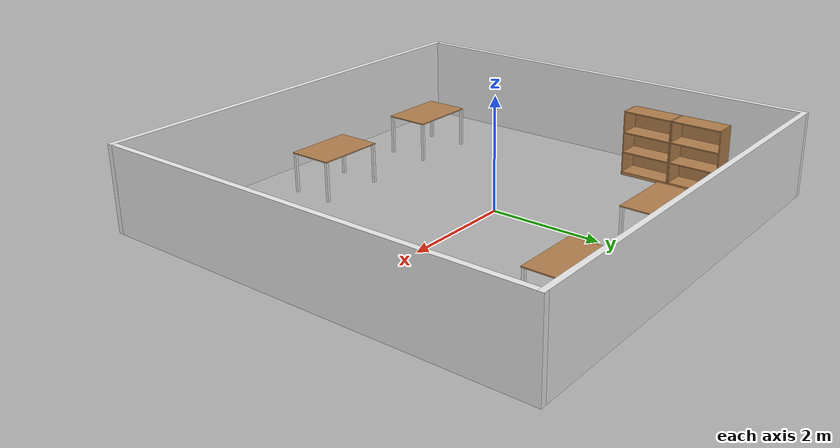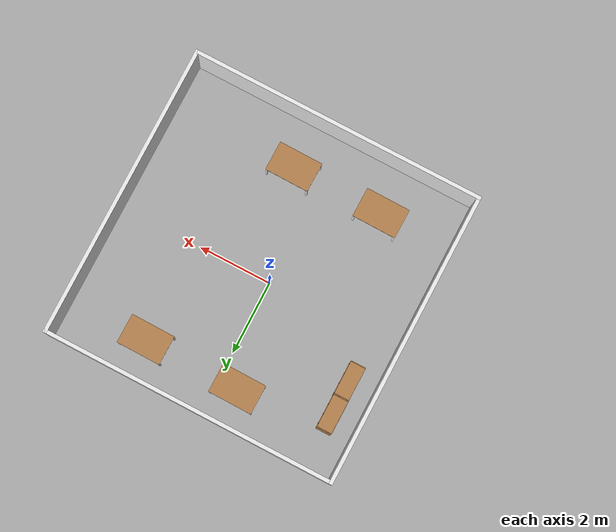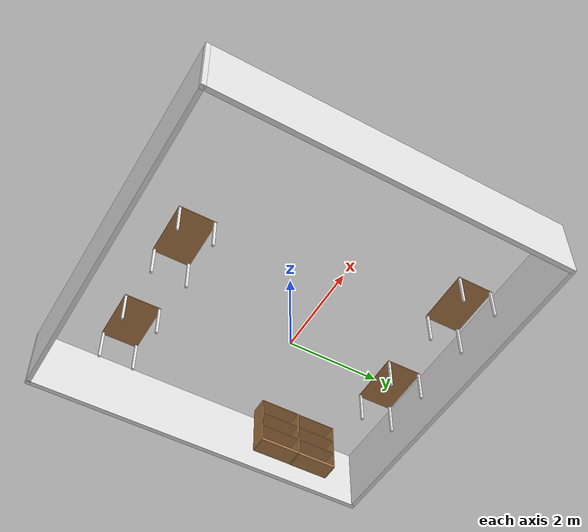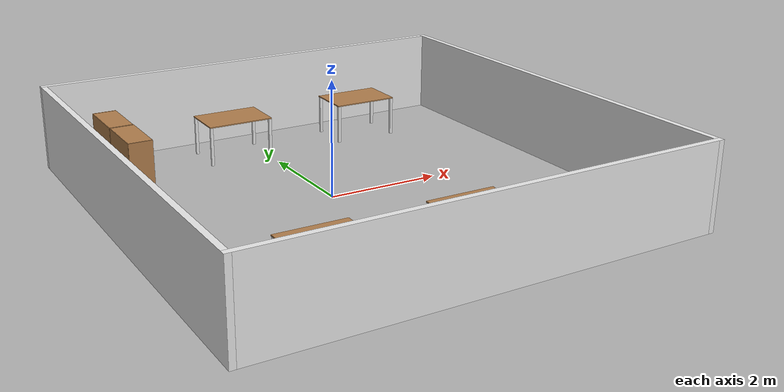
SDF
<?xml version='1.0'?>
<sdf version='1.7'>
  <model name='lab'>
    <pose> 0 0 0.53 0 0 0 </pose>
    <model name='bookshelf1'>
      <static>1</static>
      <link name='bookshelf1_link'>
        <inertial>
          <mass>1</mass>
        </inertial>
        <collision name='bookshelf1_back'>
          <pose>0 0.005 0.6 0 -0 0</pose>
          <geometry>
            <box>
              <size>0.9 0.01 1.2</size>
            </box>
          </geometry>
        </collision>
        <visual name='bookshelf1_visual1'>
          <pose>0 0.005 0.6 0 -0 0</pose>
          <geometry>
            <box>
              <size>0.9 0.01 1.2</size>
            </box>
          </geometry>
          <material>
            <script>
              <uri>file://media/materials/scripts/gazebo.material</uri>
              <name>Gazebo/Wood</name>
            </script>
          </material>
        </visual>
        <collision name='bookshelf1_left_side'>
          <pose>0.45 -0.195 0.6 0 -0 0</pose>
          <geometry>
            <box>
              <size>0.02 0.4 1.2</size>
            </box>
          </geometry>
        </collision>
        <visual name='bookshelf1_visual2'>
          <pose>0.45 -0.195 0.6 0 -0 0</pose>
          <geometry>
            <box>
              <size>0.02 0.4 1.2</size>
            </box>
          </geometry>
          <material>
            <script>
              <uri>file://media/materials/scripts/gazebo.material</uri>
              <name>Gazebo/Wood</name>
            </script>
          </material>
        </visual>
        <collision name='bookshelf1_right_side'>
          <pose>-0.45 -0.195 0.6 0 -0 0</pose>
          <geometry>
            <box>
              <size>0.02 0.4 1.2</size>
            </box>
          </geometry>
        </collision>
        <visual name='bookshelf1_visual3'>
          <pose>-0.45 -0.195 0.6 0 -0 0</pose>
          <geometry>
            <box>
              <size>0.02 0.4 1.2</size>
            </box>
          </geometry>
          <material>
            <script>
              <uri>file://media/materials/scripts/gazebo.material</uri>
              <name>Gazebo/Wood</name>
            </script>
          </material>
        </visual>
        <collision name='bookshelf1_bottom'>
          <pose>0 -0.195 0.03 0 -0 0</pose>
          <geometry>
            <box>
              <size>0.88 0.4 0.06</size>
            </box>
          </geometry>
        </collision>
        <visual name='bookshelf1_visual4'>
          <pose>0 -0.195 0.03 0 -0 0</pose>
          <geometry>
            <box>
              <size>0.88 0.4 0.06</size>
            </box>
          </geometry>
          <material>
            <script>
              <uri>file://media/materials/scripts/gazebo.material</uri>
              <name>Gazebo/Wood</name>
            </script>
          </material>
        </visual>
        <collision name='bookshelf1_top'>
          <pose>0 -0.195 1.19 0 -0 0</pose>
          <geometry>
            <box>
              <size>0.88 0.4 0.02</size>
            </box>
          </geometry>
        </collision>
        <visual name='bookshelf1_visual5'>
          <pose>0 -0.195 1.19 0 -0 0</pose>
          <geometry>
            <box>
              <size>0.88 0.4 0.02</size>
            </box>
          </geometry>
          <material>
            <script>
              <uri>file://media/materials/scripts/gazebo.material</uri>
              <name>Gazebo/Wood</name>
            </script>
          </material>
        </visual>
        <collision name='bookshelf1_low_shelf'>
          <pose>0 -0.195 0.43 0 -0 0</pose>
          <geometry>
            <box>
              <size>0.88 0.4 0.02</size>
            </box>
          </geometry>
        </collision>
        <visual name='bookshelf1_visual6'>
          <pose>0 -0.195 0.43 0 -0 0</pose>
          <geometry>
            <box>
              <size>0.88 0.4 0.02</size>
            </box>
          </geometry>
          <material>
            <script>
              <uri>file://media/materials/scripts/gazebo.material</uri>
              <name>Gazebo/Wood</name>
            </script>
          </material>
        </visual>
        <collision name='bookshelf1_high_shelf'>
          <pose>0 -0.195 0.8 0 -0 0</pose>
          <geometry>
            <box>
              <size>0.88 0.4 0.02</size>
            </box>
          </geometry>
        </collision>
        <visual name='bookshelf1_visual7'>
          <pose>0 -0.195 0.8 0 -0 0</pose>
          <geometry>
            <box>
              <size>0.88 0.4 0.02</size>
            </box>
          </geometry>
          <material>
            <script>
              <uri>file://media/materials/scripts/gazebo.material</uri>
              <name>Gazebo/Wood</name>
            </script>
          </material>
        </visual>
      </link>
      <pose>-3.11853 1.32059 -0.521466 0 -0 1.56821</pose>
    </model>
    <model name='bookshelf2'>
      <static>1</static>
      <link name='bookshelf2_link'>
        <inertial>
          <mass>1</mass>
        </inertial>
        <collision name='bookshelf2_back'>
          <pose>0 0.005 0.6 0 -0 0</pose>
          <geometry>
            <box>
              <size>0.9 0.01 1.2</size>
            </box>
          </geometry>
        </collision>
        <visual name='bookshelf2_visual1'>
          <pose>0 0.005 0.6 0 -0 0</pose>
          <geometry>
            <box>
              <size>0.9 0.01 1.2</size>
            </box>
          </geometry>
          <material>
            <script>
              <uri>file://media/materials/scripts/gazebo.material</uri>
              <name>Gazebo/Wood</name>
            </script>
          </material>
        </visual>
        <collision name='bookshelf2_left_side'>
          <pose>0.45 -0.195 0.6 0 -0 0</pose>
          <geometry>
            <box>
              <size>0.02 0.4 1.2</size>
            </box>
          </geometry>
        </collision>
        <visual name='bookshelf2_visual2'>
          <pose>0.45 -0.195 0.6 0 -0 0</pose>
          <geometry>
            <box>
              <size>0.02 0.4 1.2</size>
            </box>
          </geometry>
          <material>
            <script>
              <uri>file://media/materials/scripts/gazebo.material</uri>
              <name>Gazebo/Wood</name>
            </script>
          </material>
        </visual>
        <collision name='bookshelf2_right_side'>
          <pose>-0.45 -0.195 0.6 0 -0 0</pose>
          <geometry>
            <box>
              <size>0.02 0.4 1.2</size>
            </box>
          </geometry>
        </collision>
        <visual name='bookshelf2_visual3'>
          <pose>-0.45 -0.195 0.6 0 -0 0</pose>
          <geometry>
            <box>
              <size>0.02 0.4 1.2</size>
            </box>
          </geometry>
          <material>
            <script>
              <uri>file://media/materials/scripts/gazebo.material</uri>
              <name>Gazebo/Wood</name>
            </script>
          </material>
        </visual>
        <collision name='bookshelf2_bottom'>
          <pose>0 -0.195 0.03 0 -0 0</pose>
          <geometry>
            <box>
              <size>0.88 0.4 0.06</size>
            </box>
          </geometry>
        </collision>
        <visual name='bookshelf2_visual4'>
          <pose>0 -0.195 0.03 0 -0 0</pose>
          <geometry>
            <box>
              <size>0.88 0.4 0.06</size>
            </box>
          </geometry>
          <material>
            <script>
              <uri>file://media/materials/scripts/gazebo.material</uri>
              <name>Gazebo/Wood</name>
            </script>
          </material>
        </visual>
        <collision name='bookshelf2_top'>
          <pose>0 -0.195 1.19 0 -0 0</pose>
          <geometry>
            <box>
              <size>0.88 0.4 0.02</size>
            </box>
          </geometry>
        </collision>
        <visual name='bookshelf2_visual5'>
          <pose>0 -0.195 1.19 0 -0 0</pose>
          <geometry>
            <box>
              <size>0.88 0.4 0.02</size>
            </box>
          </geometry>
          <material>
            <script>
              <uri>file://media/materials/scripts/gazebo.material</uri>
              <name>Gazebo/Wood</name>
            </script>
          </material>
        </visual>
        <collision name='bookshelf2_low_shelf'>
          <pose>0 -0.195 0.43 0 -0 0</pose>
          <geometry>
            <box>
              <size>0.88 0.4 0.02</size>
            </box>
          </geometry>
        </collision>
        <visual name='bookshelf2_visual6'>
          <pose>0 -0.195 0.43 0 -0 0</pose>
          <geometry>
            <box>
              <size>0.88 0.4 0.02</size>
            </box>
          </geometry>
          <material>
            <script>
              <uri>file://media/materials/scripts/gazebo.material</uri>
              <name>Gazebo/Wood</name>
            </script>
          </material>
        </visual>
        <collision name='bookshelf2_high_shelf'>
          <pose>0 -0.195 0.8 0 -0 0</pose>
          <geometry>
            <box>
              <size>0.88 0.4 0.02</size>
            </box>
          </geometry>
        </collision>
        <visual name='bookshelf2_visual7'>
          <pose>0 -0.195 0.8 0 -0 0</pose>
          <geometry>
            <box>
              <size>0.88 0.4 0.02</size>
            </box>
          </geometry>
          <material>
            <script>
              <uri>file://media/materials/scripts/gazebo.material</uri>
              <name>Gazebo/Wood</name>
            </script>
          </material>
        </visual>
      </link>
      <pose>-3.12252 2.24165 -0.521466 0 -0 1.56821</pose>
    </model>
    <model name='deskB'>
      <pose>-1.67802 -2.81246 0.202422 0 0 -1.58047</pose>
      <static>1</static>
      <allow_auto_disable>1</allow_auto_disable>
      <link name='desk_link'>
        <pose>0 0 0 0 -0 0</pose>
        <inertial>
          <pose>0 0 0 0 -0 0</pose>
          <mass>30</mass>
          <inertia>
            <ixx>1</ixx>
            <ixy>0</ixy>
            <ixz>0</ixz>
            <iyy>1</iyy>
            <iyz>0</iyz>
            <izz>1</izz>
          </inertia>
        </inertial>
        <gravity>1</gravity>
        <velocity_decay/>
        <self_collide>1</self_collide>
        <enable_wind>0</enable_wind>
        <kinematic>0</kinematic>
        <visual name='desk_visual'>
          <pose>0 0 0 0 -0 0</pose>
          <geometry>
            <box>
              <size>0.8 1.2 0.02</size>
            </box>
          </geometry>
          <material>
            <script>
              <name>Gazebo/Wood</name>
              <uri>file://media/materials/scripts/gazebo.material</uri>
            </script>
            <shader type='pixel'/>
          </material>
          <transparency>0</transparency>
          <cast_shadows>1</cast_shadows>
        </visual>
        <collision name='desk1_collision'>
          <pose>0 0 -0.003 0 -0 0</pose>
          <geometry>
            <box>
              <size>0.8 1.2 0.014</size>
            </box>
          </geometry>
        </collision>
        <collision name='desk2_collision'>
          <pose>0 0 0.006 0 -0 0</pose>
          <geometry>
            <box>
              <size>0.8 1.2 0.006</size>
            </box>
          </geometry>
        </collision>
      </link>
      <link name='leg_link1'>
        <pose>0.37 -0.57 -0.36 0 -0 0</pose>
        <inertial>
          <pose>0 0 0 0 -0 0</pose>
          <mass>5</mass>
          <inertia>
            <ixx>1</ixx>
            <ixy>0</ixy>
            <ixz>0</ixz>
            <iyy>1</iyy>
            <iyz>0</iyz>
            <izz>1</izz>
          </inertia>
        </inertial>
        <gravity>1</gravity>
        <velocity_decay/>
        <self_collide>1</self_collide>
        <enable_wind>0</enable_wind>
        <kinematic>0</kinematic>
        <visual name='leg_visual1'>
          <pose>0 0 0 0 -0 0</pose>
          <geometry>
            <box>
              <size>0.05 0.05 0.71</size>
            </box>
          </geometry>
          <material>
            <script>
              <name>Gazebo/White</name>
              <uri>file://media/materials/scripts/gazebo.material</uri>
            </script>
            <shader type='pixel'/>
          </material>
          <transparency>0</transparency>
          <cast_shadows>1</cast_shadows>
        </visual>
        <collision name='leg_collision1'>
          <pose>0 0 0 0 -0 0</pose>
          <geometry>
            <box>
              <size>0.05 0.05 0.71</size>
            </box>
          </geometry>
        </collision>
      </link>
      <link name='leg_link2'>
        <pose>0.37 0.57 -0.36 0 -0 0</pose>
        <inertial>
          <pose>0 0 0 0 -0 0</pose>
          <mass>5</mass>
          <inertia>
            <ixx>1</ixx>
            <ixy>0</ixy>
            <ixz>0</ixz>
            <iyy>1</iyy>
            <iyz>0</iyz>
            <izz>1</izz>
          </inertia>
        </inertial>
        <gravity>1</gravity>
        <velocity_decay/>
        <self_collide>1</self_collide>
        <enable_wind>0</enable_wind>
        <kinematic>0</kinematic>
        <visual name='leg_visual2'>
          <pose>0 0 0 0 -0 0</pose>
          <geometry>
            <box>
              <size>0.05 0.05 0.71</size>
            </box>
          </geometry>
          <material>
            <script>
              <name>Gazebo/White</name>
              <uri>file://media/materials/scripts/gazebo.material</uri>
            </script>
            <shader type='pixel'/>
          </material>
          <transparency>0</transparency>
          <cast_shadows>1</cast_shadows>
        </visual>
        <collision name='leg_collision2'>
          <pose>0 0 0 0 -0 0</pose>
          <geometry>
            <box>
              <size>0.05 0.05 0.71</size>
            </box>
          </geometry>
        </collision>
      </link>
      <link name='leg_link3'>
        <pose>-0.37 0.57 -0.36 0 -0 0</pose>
        <inertial>
          <pose>0 0 0 0 -0 0</pose>
          <mass>5</mass>
          <inertia>
            <ixx>1</ixx>
            <ixy>0</ixy>
            <ixz>0</ixz>
            <iyy>1</iyy>
            <iyz>0</iyz>
            <izz>1</izz>
          </inertia>
        </inertial>
        <gravity>1</gravity>
        <velocity_decay/>
        <self_collide>1</self_collide>
        <enable_wind>0</enable_wind>
        <kinematic>0</kinematic>
        <visual name='leg_visual3'>
          <pose>0 0 0 0 -0 0</pose>
          <geometry>
            <box>
              <size>0.05 0.05 0.71</size>
            </box>
          </geometry>
          <material>
            <script>
              <name>Gazebo/White</name>
              <uri>file://media/materials/scripts/gazebo.material</uri>
            </script>
            <shader type='pixel'/>
          </material>
          <transparency>0</transparency>
          <cast_shadows>1</cast_shadows>
        </visual>
        <collision name='leg_collision3'>
          <pose>0 0 0 0 -0 0</pose>
          <geometry>
            <box>
              <size>0.05 0.05 0.71</size>
            </box>
          </geometry>
        </collision>
      </link>
      <link name='leg_link4'>
        <pose>-0.37 -0.57 -0.36 0 -0 0</pose>
        <inertial>
          <pose>0 0 0 0 -0 0</pose>
          <mass>5</mass>
          <inertia>
            <ixx>1</ixx>
            <ixy>0</ixy>
            <ixz>0</ixz>
            <iyy>1</iyy>
            <iyz>0</iyz>
            <izz>1</izz>
          </inertia>
        </inertial>
        <gravity>1</gravity>
        <velocity_decay/>
        <self_collide>1</self_collide>
        <enable_wind>0</enable_wind>
        <kinematic>0</kinematic>
        <visual name='leg_visual4'>
          <pose>0 0 0 0 -0 0</pose>
          <geometry>
            <box>
              <size>0.05 0.05 0.71</size>
            </box>
          </geometry>
          <material>
            <script>
              <name>Gazebo/White</name>
              <uri>file://media/materials/scripts/gazebo.material</uri>
            </script>
            <shader type='pixel'/>
          </material>
          <transparency>0</transparency>
          <cast_shadows>1</cast_shadows>
        </visual>
        <collision name='leg_collision4'>
          <pose>0 0 0 0 -0 0</pose>
          <geometry>
            <box>
              <size>0.05 0.05 0.71</size>
            </box>
          </geometry>
        </collision>
      </link>
    </model>
    <model name='deskA'>
      <pose>0.811479 -2.8371 0.194445 0 0 -1.58047</pose>
      <static>1</static>
      <allow_auto_disable>1</allow_auto_disable>
      <link name='desk_link'>
        <pose>0 0 0 0 -0 0</pose>
        <inertial>
          <pose>0 0 0 0 -0 0</pose>
          <mass>30</mass>
          <inertia>
            <ixx>1</ixx>
            <ixy>0</ixy>
            <ixz>0</ixz>
            <iyy>1</iyy>
            <iyz>0</iyz>
            <izz>1</izz>
          </inertia>
        </inertial>
        <gravity>1</gravity>
        <velocity_decay/>
        <self_collide>1</self_collide>
        <enable_wind>0</enable_wind>
        <kinematic>0</kinematic>
        <visual name='desk_visual'>
          <pose>0 0 0 0 -0 0</pose>
          <geometry>
            <box>
              <size>0.8 1.2 0.02</size>
            </box>
          </geometry>
          <material>
            <script>
              <name>Gazebo/Wood</name>
              <uri>file://media/materials/scripts/gazebo.material</uri>
            </script>
            <shader type='pixel'/>
          </material>
          <transparency>0</transparency>
          <cast_shadows>1</cast_shadows>
        </visual>
        <collision name='desk1_collision'>
          <pose>0 0 -0.003 0 -0 0</pose>
          <geometry>
            <box>
              <size>0.8 1.2 0.014</size>
            </box>
          </geometry>
        </collision>
        <collision name='desk2_collision'>
          <pose>0 0 0.006 0 -0 0</pose>
          <geometry>
            <box>
              <size>0.8 1.2 0.006</size>
            </box>
          </geometry>
        </collision>
      </link>
      <link name='leg_link1'>
        <pose>0.37 -0.57 -0.36 0 -0 0</pose>
        <inertial>
          <pose>0 0 0 0 -0 0</pose>
          <mass>5</mass>
          <inertia>
            <ixx>1</ixx>
            <ixy>0</ixy>
            <ixz>0</ixz>
            <iyy>1</iyy>
            <iyz>0</iyz>
            <izz>1</izz>
          </inertia>
        </inertial>
        <gravity>1</gravity>
        <velocity_decay/>
        <self_collide>1</self_collide>
        <enable_wind>0</enable_wind>
        <kinematic>0</kinematic>
        <visual name='leg_visual1'>
          <pose>0 0 0 0 -0 0</pose>
          <geometry>
            <box>
              <size>0.05 0.05 0.71</size>
            </box>
          </geometry>
          <material>
            <script>
              <name>Gazebo/White</name>
              <uri>file://media/materials/scripts/gazebo.material</uri>
            </script>
            <shader type='pixel'/>
          </material>
          <transparency>0</transparency>
          <cast_shadows>1</cast_shadows>
        </visual>
        <collision name='leg_collision1'>
          <pose>0 0 0 0 -0 0</pose>
          <geometry>
            <box>
              <size>0.05 0.05 0.71</size>
            </box>
          </geometry>
        </collision>
      </link>
      <link name='leg_link2'>
        <pose>0.37 0.57 -0.36 0 -0 0</pose>
        <inertial>
          <pose>0 0 0 0 -0 0</pose>
          <mass>5</mass>
          <inertia>
            <ixx>1</ixx>
            <ixy>0</ixy>
            <ixz>0</ixz>
            <iyy>1</iyy>
            <iyz>0</iyz>
            <izz>1</izz>
          </inertia>
        </inertial>
        <gravity>1</gravity>
        <velocity_decay/>
        <self_collide>1</self_collide>
        <enable_wind>0</enable_wind>
        <kinematic>0</kinematic>
        <visual name='leg_visual2'>
          <pose>0 0 0 0 -0 0</pose>
          <geometry>
            <box>
              <size>0.05 0.05 0.71</size>
            </box>
          </geometry>
          <material>
            <script>
              <name>Gazebo/White</name>
              <uri>file://media/materials/scripts/gazebo.material</uri>
            </script>
            <shader type='pixel'/>
          </material>
          <transparency>0</transparency>
          <cast_shadows>1</cast_shadows>
        </visual>
        <collision name='leg_collision2'>
          <pose>0 0 0 0 -0 0</pose>
          <geometry>
            <box>
              <size>0.05 0.05 0.71</size>
            </box>
          </geometry>
        </collision>
      </link>
      <link name='leg_link3'>
        <pose>-0.37 0.57 -0.36 0 -0 0</pose>
        <inertial>
          <pose>0 0 0 0 -0 0</pose>
          <mass>5</mass>
          <inertia>
            <ixx>1</ixx>
            <ixy>0</ixy>
            <ixz>0</ixz>
            <iyy>1</iyy>
            <iyz>0</iyz>
            <izz>1</izz>
          </inertia>
        </inertial>
        <gravity>1</gravity>
        <velocity_decay/>
        <self_collide>1</self_collide>
        <enable_wind>0</enable_wind>
        <kinematic>0</kinematic>
        <visual name='leg_visual3'>
          <pose>0 0 0 0 -0 0</pose>
          <geometry>
            <box>
              <size>0.05 0.05 0.71</size>
            </box>
          </geometry>
          <material>
            <script>
              <name>Gazebo/White</name>
              <uri>file://media/materials/scripts/gazebo.material</uri>
            </script>
            <shader type='pixel'/>
          </material>
          <transparency>0</transparency>
          <cast_shadows>1</cast_shadows>
        </visual>
        <collision name='leg_collision3'>
          <pose>0 0 0 0 -0 0</pose>
          <geometry>
            <box>
              <size>0.05 0.05 0.71</size>
            </box>
          </geometry>
        </collision>
      </link>
      <link name='leg_link4'>
        <pose>-0.37 -0.57 -0.36 0 -0 0</pose>
        <inertial>
          <pose>0 0 0 0 -0 0</pose>
          <mass>5</mass>
          <inertia>
            <ixx>1</ixx>
            <ixy>0</ixy>
            <ixz>0</ixz>
            <iyy>1</iyy>
            <iyz>0</iyz>
            <izz>1</izz>
          </inertia>
        </inertial>
        <gravity>1</gravity>
        <velocity_decay/>
        <self_collide>1</self_collide>
        <enable_wind>0</enable_wind>
        <kinematic>0</kinematic>
        <visual name='leg_visual4'>
          <pose>0 0 0 0 -0 0</pose>
          <geometry>
            <box>
              <size>0.05 0.05 0.71</size>
            </box>
          </geometry>
          <material>
            <script>
              <name>Gazebo/White</name>
              <uri>file://media/materials/scripts/gazebo.material</uri>
            </script>
            <shader type='pixel'/>
          </material>
          <transparency>0</transparency>
          <cast_shadows>1</cast_shadows>
        </visual>
        <collision name='leg_collision4'>
          <pose>0 0 0 0 -0 0</pose>
          <geometry>
            <box>
              <size>0.05 0.05 0.71</size>
            </box>
          </geometry>
        </collision>
      </link>
    </model>
    <model name='deskC'>
      <pose>2.04215 2.74919 0.203272 0 0 -1.58047</pose>
      <static>1</static>
      <allow_auto_disable>1</allow_auto_disable>
      <link name='desk_link'>
        <pose>0 0 0 0 -0 0</pose>
        <inertial>
          <pose>0 0 0 0 -0 0</pose>
          <mass>30</mass>
          <inertia>
            <ixx>1</ixx>
            <ixy>0</ixy>
            <ixz>0</ixz>
            <iyy>1</iyy>
            <iyz>0</iyz>
            <izz>1</izz>
          </inertia>
        </inertial>
        <gravity>1</gravity>
        <velocity_decay/>
        <self_collide>1</self_collide>
        <enable_wind>0</enable_wind>
        <kinematic>0</kinematic>
        <visual name='desk_visual'>
          <pose>0 0 0 0 -0 0</pose>
          <geometry>
            <box>
              <size>0.8 1.2 0.02</size>
            </box>
          </geometry>
          <material>
            <script>
              <name>Gazebo/Wood</name>
              <uri>file://media/materials/scripts/gazebo.material</uri>
            </script>
            <shader type='pixel'/>
          </material>
          <transparency>0</transparency>
          <cast_shadows>1</cast_shadows>
        </visual>
        <collision name='desk1_collision'>
          <pose>0 0 -0.003 0 -0 0</pose>
          <geometry>
            <box>
              <size>0.8 1.2 0.014</size>
            </box>
          </geometry>
        </collision>
        <collision name='desk2_collision'>
          <pose>0 0 0.006 0 -0 0</pose>
          <geometry>
            <box>
              <size>0.8 1.2 0.006</size>
            </box>
          </geometry>
        </collision>
      </link>
      <link name='leg_link1'>
        <pose>0.37 -0.57 -0.36 0 -0 0</pose>
        <inertial>
          <pose>0 0 0 0 -0 0</pose>
          <mass>5</mass>
          <inertia>
            <ixx>1</ixx>
            <ixy>0</ixy>
            <ixz>0</ixz>
            <iyy>1</iyy>
            <iyz>0</iyz>
            <izz>1</izz>
          </inertia>
        </inertial>
        <gravity>1</gravity>
        <velocity_decay/>
        <self_collide>1</self_collide>
        <enable_wind>0</enable_wind>
        <kinematic>0</kinematic>
        <visual name='leg_visual1'>
          <pose>0 0 0 0 -0 0</pose>
          <geometry>
            <box>
              <size>0.05 0.05 0.71</size>
            </box>
          </geometry>
          <material>
            <script>
              <name>Gazebo/White</name>
              <uri>file://media/materials/scripts/gazebo.material</uri>
            </script>
            <shader type='pixel'/>
          </material>
          <transparency>0</transparency>
          <cast_shadows>1</cast_shadows>
        </visual>
        <collision name='leg_collision1'>
          <pose>0 0 0 0 -0 0</pose>
          <geometry>
            <box>
              <size>0.05 0.05 0.71</size>
            </box>
          </geometry>
        </collision>
      </link>
      <link name='leg_link2'>
        <pose>0.37 0.57 -0.36 0 -0 0</pose>
        <inertial>
          <pose>0 0 0 0 -0 0</pose>
          <mass>5</mass>
          <inertia>
            <ixx>1</ixx>
            <ixy>0</ixy>
            <ixz>0</ixz>
            <iyy>1</iyy>
            <iyz>0</iyz>
            <izz>1</izz>
          </inertia>
        </inertial>
        <gravity>1</gravity>
        <velocity_decay/>
        <self_collide>1</self_collide>
        <enable_wind>0</enable_wind>
        <kinematic>0</kinematic>
        <visual name='leg_visual2'>
          <pose>0 0 0 0 -0 0</pose>
          <geometry>
            <box>
              <size>0.05 0.05 0.71</size>
            </box>
          </geometry>
          <material>
            <script>
              <name>Gazebo/White</name>
              <uri>file://media/materials/scripts/gazebo.material</uri>
            </script>
            <shader type='pixel'/>
          </material>
          <transparency>0</transparency>
          <cast_shadows>1</cast_shadows>
        </visual>
        <collision name='leg_collision2'>
          <pose>0 0 0 0 -0 0</pose>
          <geometry>
            <box>
              <size>0.05 0.05 0.71</size>
            </box>
          </geometry>
        </collision>
      </link>
      <link name='leg_link3'>
        <pose>-0.37 0.57 -0.36 0 -0 0</pose>
        <inertial>
          <pose>0 0 0 0 -0 0</pose>
          <mass>5</mass>
          <inertia>
            <ixx>1</ixx>
            <ixy>0</ixy>
            <ixz>0</ixz>
            <iyy>1</iyy>
            <iyz>0</iyz>
            <izz>1</izz>
          </inertia>
        </inertial>
        <gravity>1</gravity>
        <velocity_decay/>
        <self_collide>1</self_collide>
        <enable_wind>0</enable_wind>
        <kinematic>0</kinematic>
        <visual name='leg_visual3'>
          <pose>0 0 0 0 -0 0</pose>
          <geometry>
            <box>
              <size>0.05 0.05 0.71</size>
            </box>
          </geometry>
          <material>
            <script>
              <name>Gazebo/White</name>
              <uri>file://media/materials/scripts/gazebo.material</uri>
            </script>
            <shader type='pixel'/>
          </material>
          <transparency>0</transparency>
          <cast_shadows>1</cast_shadows>
        </visual>
        <collision name='leg_collision3'>
          <pose>0 0 0 0 -0 0</pose>
          <geometry>
            <box>
              <size>0.05 0.05 0.71</size>
            </box>
          </geometry>
        </collision>
      </link>
      <link name='leg_link4'>
        <pose>-0.37 -0.57 -0.36 0 -0 0</pose>
        <inertial>
          <pose>0 0 0 0 -0 0</pose>
          <mass>5</mass>
          <inertia>
            <ixx>1</ixx>
            <ixy>0</ixy>
            <ixz>0</ixz>
            <iyy>1</iyy>
            <iyz>0</iyz>
            <izz>1</izz>
          </inertia>
        </inertial>
        <gravity>1</gravity>
        <velocity_decay/>
        <self_collide>1</self_collide>
        <enable_wind>0</enable_wind>
        <kinematic>0</kinematic>
        <visual name='leg_visual4'>
          <pose>0 0 0 0 -0 0</pose>
          <geometry>
            <box>
              <size>0.05 0.05 0.71</size>
            </box>
          </geometry>
          <material>
            <script>
              <name>Gazebo/White</name>
              <uri>file://media/materials/scripts/gazebo.material</uri>
            </script>
            <shader type='pixel'/>
          </material>
          <transparency>0</transparency>
          <cast_shadows>1</cast_shadows>
        </visual>
        <collision name='leg_collision4'>
          <pose>0 0 0 0 -0 0</pose>
          <geometry>
            <box>
              <size>0.05 0.05 0.71</size>
            </box>
          </geometry>
        </collision>
      </link>
    </model>
    <model name='deskD'>
      <pose>-0.546108 2.76869 0.190041 0 0 -1.58047</pose>
      <static>1</static>
      <allow_auto_disable>1</allow_auto_disable>
      <link name='desk_link'>
        <pose>0 0 0 0 -0 0</pose>
        <inertial>
          <pose>0 0 0 0 -0 0</pose>
          <mass>30</mass>
          <inertia>
            <ixx>1</ixx>
            <ixy>0</ixy>
            <ixz>0</ixz>
            <iyy>1</iyy>
            <iyz>0</iyz>
            <izz>1</izz>
          </inertia>
        </inertial>
        <gravity>1</gravity>
        <velocity_decay/>
        <self_collide>1</self_collide>
        <enable_wind>0</enable_wind>
        <kinematic>0</kinematic>
        <visual name='desk_visual'>
          <pose>0 0 0 0 -0 0</pose>
          <geometry>
            <box>
              <size>0.8 1.2 0.02</size>
            </box>
          </geometry>
          <material>
            <script>
              <name>Gazebo/Wood</name>
              <uri>file://media/materials/scripts/gazebo.material</uri>
            </script>
            <shader type='pixel'/>
          </material>
          <transparency>0</transparency>
          <cast_shadows>1</cast_shadows>
        </visual>
        <collision name='desk1_collision'>
          <pose>0 0 -0.003 0 -0 0</pose>
          <geometry>
            <box>
              <size>0.8 1.2 0.014</size>
            </box>
          </geometry>
        </collision>
        <collision name='desk2_collision'>
          <pose>0 0 0.006 0 -0 0</pose>
          <geometry>
            <box>
              <size>0.8 1.2 0.006</size>
            </box>
          </geometry>
        </collision>
      </link>
      <link name='leg_link1'>
        <pose>0.37 -0.57 -0.36 0 -0 0</pose>
        <inertial>
          <pose>0 0 0 0 -0 0</pose>
          <mass>5</mass>
          <inertia>
            <ixx>1</ixx>
            <ixy>0</ixy>
            <ixz>0</ixz>
            <iyy>1</iyy>
            <iyz>0</iyz>
            <izz>1</izz>
          </inertia>
        </inertial>
        <gravity>1</gravity>
        <velocity_decay/>
        <self_collide>1</self_collide>
        <enable_wind>0</enable_wind>
        <kinematic>0</kinematic>
        <visual name='leg_visual1'>
          <pose>0 0 0 0 -0 0</pose>
          <geometry>
            <box>
              <size>0.05 0.05 0.71</size>
            </box>
          </geometry>
          <material>
            <script>
              <name>Gazebo/White</name>
              <uri>file://media/materials/scripts/gazebo.material</uri>
            </script>
            <shader type='pixel'/>
          </material>
          <transparency>0</transparency>
          <cast_shadows>1</cast_shadows>
        </visual>
        <collision name='leg_collision1'>
          <pose>0 0 0 0 -0 0</pose>
          <geometry>
            <box>
              <size>0.05 0.05 0.71</size>
            </box>
          </geometry>
        </collision>
      </link>
      <link name='leg_link2'>
        <pose>0.37 0.57 -0.36 0 -0 0</pose>
        <inertial>
          <pose>0 0 0 0 -0 0</pose>
          <mass>5</mass>
          <inertia>
            <ixx>1</ixx>
            <ixy>0</ixy>
            <ixz>0</ixz>
            <iyy>1</iyy>
            <iyz>0</iyz>
            <izz>1</izz>
          </inertia>
        </inertial>
        <gravity>1</gravity>
        <velocity_decay/>
        <self_collide>1</self_collide>
        <enable_wind>0</enable_wind>
        <kinematic>0</kinematic>
        <visual name='leg_visual2'>
          <pose>0 0 0 0 -0 0</pose>
          <geometry>
            <box>
              <size>0.05 0.05 0.71</size>
            </box>
          </geometry>
          <material>
            <script>
              <name>Gazebo/White</name>
              <uri>file://media/materials/scripts/gazebo.material</uri>
            </script>
            <shader type='pixel'/>
          </material>
          <transparency>0</transparency>
          <cast_shadows>1</cast_shadows>
        </visual>
        <collision name='leg_collision2'>
          <pose>0 0 0 0 -0 0</pose>
          <geometry>
            <box>
              <size>0.05 0.05 0.71</size>
            </box>
          </geometry>
        </collision>
      </link>
      <link name='leg_link3'>
        <pose>-0.37 0.57 -0.36 0 -0 0</pose>
        <inertial>
          <pose>0 0 0 0 -0 0</pose>
          <mass>5</mass>
          <inertia>
            <ixx>1</ixx>
            <ixy>0</ixy>
            <ixz>0</ixz>
            <iyy>1</iyy>
            <iyz>0</iyz>
            <izz>1</izz>
          </inertia>
        </inertial>
        <gravity>1</gravity>
        <velocity_decay/>
        <self_collide>1</self_collide>
        <enable_wind>0</enable_wind>
        <kinematic>0</kinematic>
        <visual name='leg_visual3'>
          <pose>0 0 0 0 -0 0</pose>
          <geometry>
            <box>
              <size>0.05 0.05 0.71</size>
            </box>
          </geometry>
          <material>
            <script>
              <name>Gazebo/White</name>
              <uri>file://media/materials/scripts/gazebo.material</uri>
            </script>
            <shader type='pixel'/>
          </material>
          <transparency>0</transparency>
          <cast_shadows>1</cast_shadows>
        </visual>
        <collision name='leg_collision3'>
          <pose>0 0 0 0 -0 0</pose>
          <geometry>
            <box>
              <size>0.05 0.05 0.71</size>
            </box>
          </geometry>
        </collision>
      </link>
      <link name='leg_link4'>
        <pose>-0.37 -0.57 -0.36 0 -0 0</pose>
        <inertial>
          <pose>0 0 0 0 -0 0</pose>
          <mass>5</mass>
          <inertia>
            <ixx>1</ixx>
            <ixy>0</ixy>
            <ixz>0</ixz>
            <iyy>1</iyy>
            <iyz>0</iyz>
            <izz>1</izz>
          </inertia>
        </inertial>
        <gravity>1</gravity>
        <velocity_decay/>
        <self_collide>1</self_collide>
        <enable_wind>0</enable_wind>
        <kinematic>0</kinematic>
        <visual name='leg_visual4'>
          <pose>0 0 0 0 -0 0</pose>
          <geometry>
            <box>
              <size>0.05 0.05 0.71</size>
            </box>
          </geometry>
          <material>
            <script>
              <name>Gazebo/White</name>
              <uri>file://media/materials/scripts/gazebo.material</uri>
            </script>
            <shader type='pixel'/>
          </material>
          <transparency>0</transparency>
          <cast_shadows>1</cast_shadows>
        </visual>
        <collision name='leg_collision4'>
          <pose>0 0 0 0 -0 0</pose>
          <geometry>
            <box>
              <size>0.05 0.05 0.71</size>
            </box>
          </geometry>
        </collision>
      </link>
    </model>
    <model name='room'>
      <pose>-2.10638 -1.66021 -0.521466 0 -0 0</pose>
      <link name='Wall_1'>
        <collision name='Wall_1_Collision'>
          <geometry>
            <box>
              <size>8 0.1 1.5</size>
            </box>
          </geometry>
          <pose>0 1 0.75 0 -0 0</pose>
        </collision>
        <visual name='Wall_1_Visual'>
          <pose>0 1 0.75 0 -0 0</pose>
          <geometry>
            <box>
              <size>8 0.1 1.5</size>
            </box>
          </geometry>
          <material>
            <script>
              <uri>file://media/materials/scripts/gazebo.material</uri>
              <name>Gazebo/White</name>
            </script>
          </material>
          <meta>
            <layer>0</layer>
          </meta>
        </visual>
        <pose>5.35 1.45074 0 0 -0 -1.57083</pose>
      </link>
      <link name='Wall_2'>
        <collision name='Wall_2_Collision'>
          <geometry>
            <box>
              <size>8 0.1 1.5</size>
            </box>
          </geometry>
          <pose>0 1 0.75 0 -0 0</pose>
        </collision>
        <visual name='Wall_2_Visual'>
          <pose>0 1 0.75 0 -0 0</pose>
          <geometry>
            <box>
              <size>8 0.1 1.5</size>
            </box>
          </geometry>
          <material>
            <script>
              <uri>file://media/materials/scripts/gazebo.material</uri>
              <name>Gazebo/White</name>
            </script>
          </material>
          <meta>
            <layer>0</layer>
          </meta>
        </visual>
        <pose>2.39991 -1.49918 0 0 -0 3.14159</pose>
      </link>
      <link name='Wall_3'>
        <collision name='Wall_3_Collision'>
          <geometry>
            <box>
              <size>8 0.1 1.5</size>
            </box>
          </geometry>
          <pose>0 -1 0.75 0 -0 0</pose>
        </collision>
        <visual name='Wall_3_Visual'>
          <pose>0 -1 0.75 0 -0 0</pose>
          <geometry>
            <box>
              <size>8 0.1 1.5</size>
            </box>
          </geometry>
          <material>
            <script>
              <uri>file://media/materials/scripts/gazebo.material</uri>
              <name>Gazebo/White</name>
            </script>
          </material>
          <meta>
            <layer>0</layer>
          </meta>
        </visual>
        <pose>2.40009 4.40067 0 0 -0 3.14159</pose>
      </link>
      <link name='Wall_4'>
        <collision name='Wall_4_Collision'>
          <geometry>
            <box>
              <size>8 0.1 1.5</size>
            </box>
          </geometry>
          <pose>1.5 -1 0.75 0 -0 0</pose>
        </collision>
        <visual name='Wall_4_Visual'>
          <pose>1.5 -1 0.75 0 -0 0</pose>
          <geometry>
            <box>
              <size>8 0.1 1.5</size>
            </box>
          </geometry>
          <material>
            <script>
              <uri>file://media/materials/scripts/gazebo.material</uri>
              <name>Gazebo/White</name>
            </script>
          </material>
          <meta>
            <layer>0</layer>
          </meta>
        </visual>
        <pose>-0.549999 2.95074 0 0 -0 -1.57086</pose>
      </link>
      <static>1</static>
    </model>
    <static>0</static>
    <allow_auto_disable>1</allow_auto_disable>
  </model>
</sdf>
